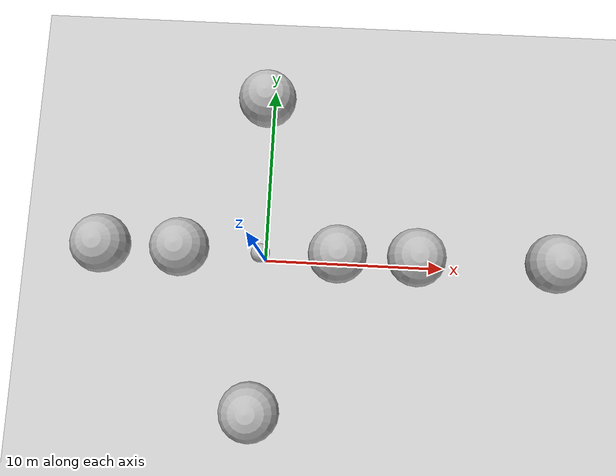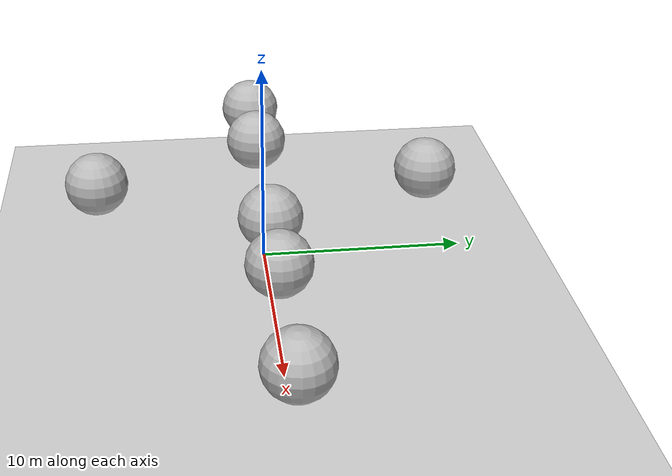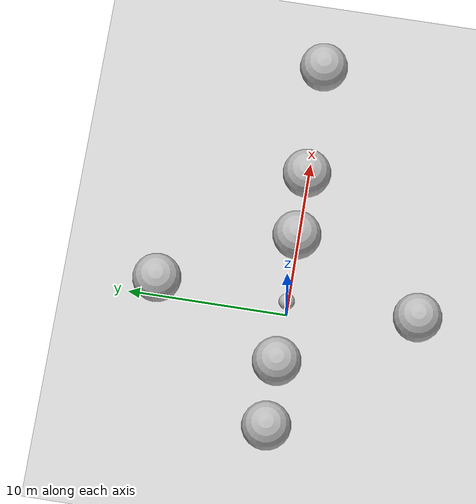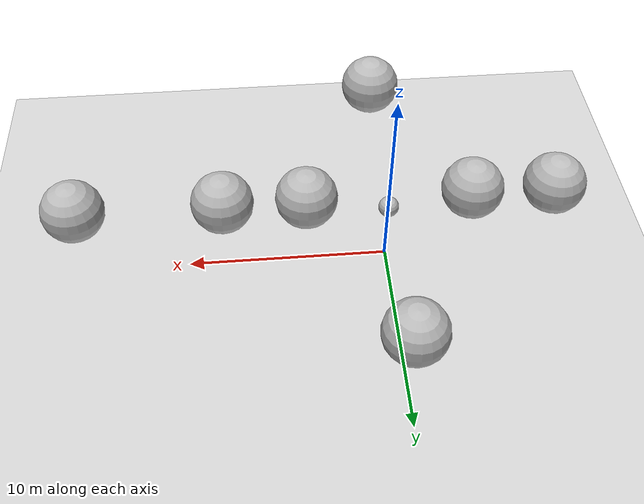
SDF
<?xml version="1.0" ?>
<sdf version="1.4">
    <world name="default">
        <include>
            <uri>model://sun</uri>
        </include>
        <physics type="dart">
            <gravity>0 0 -10.0</gravity>
        </physics>

	<include>
	<uri>model://ground_plane</uri>
	</include>

	<model name ='small_centered_sphere'>
	<static>0</static>
	<pose>0 0 3.5 0 0 0</pose>
	<link name ='body'>
	  <inertial>
	    <pose>0 0 0 0 0 0</pose>
	  </inertial>
	  <collision name ='geom'>
	    <geometry>
	      <sphere><radius>0.5</radius></sphere>
	    </geometry>
	  </collision>
	  <visual name ='visual'>
	    <geometry>
	      <sphere><radius>0.5</radius></sphere>
	    </geometry>
	  </visual>
	</link>
	</model>

	<model name ='large_centered_sphere'>
	<static>0</static>
	<pose>4 0 4.5 0 0 0</pose>
	<link name ='body'>
	  <inertial>
	    <pose>0 0 0 0 0 0</pose>
	  </inertial>
	  <collision name ='geom'>
	    <geometry>
	      <sphere><radius>1.5</radius></sphere>
	    </geometry>
	  </collision>
	  <visual name ='visual'>
	    <geometry>
	      <sphere><radius>1.5</radius></sphere>
	    </geometry>
	  </visual>
	</link>
	</model>

	<model name ='lowered_cog_sphere'>
	<static>0</static>
	<pose>8 0 4.5 0 0 0</pose>
	<link name ='body'>
	  <inertial>
	    <pose>0 0 -0.5 0 0 0</pose>
	  </inertial>
	  <collision name ='geom'>
	    <geometry>
	      <sphere><radius>1.5</radius></sphere>
	    </geometry>
	  </collision>
	  <visual name ='visual'>
	    <geometry>
	      <sphere><radius>1.5</radius></sphere>
	    </geometry>
	  </visual>
	</link>
	</model>

	<model name ='raised_cog_sphere'>
	<static>0</static>
	<pose>-4 0 4.5 0 0 0</pose>
	<link name ='body'>
	  <inertial>
	    <pose>0 0 0.5 0 0 0</pose>
	  </inertial>
	  <collision name ='geom'>
	    <geometry>
	      <sphere><radius>1.5</radius></sphere>
	    </geometry>
	  </collision>
	  <visual name ='visual'>
	    <geometry>
	      <sphere><radius>1.5</radius></sphere>
	    </geometry>
	  </visual>
	</link>
	</model>

	<model name ='cog_y_offset_sphere'>
	<static>0</static>
	<pose>-8 0 4.5 0 0 0</pose>
	<link name ='body'>
	  <inertial>
	    <pose>0 0.5 0 0 0 0</pose>
	  </inertial>
	  <collision name ='geom'>
	    <geometry>
	      <sphere><radius>1.5</radius></sphere>
	    </geometry>
	  </collision>
	  <visual name ='visual'>
	    <geometry>
	      <sphere><radius>1.5</radius></sphere>
	    </geometry>
	  </visual>
	</link>
	</model>

	<model name ='cog_x_offset_sphere'>
	<static>0</static>
	<pose>15 0 4.5 0 0 0</pose>
	<link name ='body'>
	  <inertial>
	    <pose>0.5 0 0 0 0 0</pose>
	  </inertial>
	  <collision name ='geom'>
	    <geometry>
	      <sphere><radius>1.5</radius></sphere>
	    </geometry>
	  </collision>
	  <visual name ='visual'>
	    <geometry>
	      <sphere><radius>1.5</radius></sphere>
	    </geometry>
	  </visual>
	</link>
	</model>

	<model name ='cog_xy_45deg_offset_sphere'>
	<static>0</static>
	<pose>0 8 4.5 0 0 0</pose>
	<link name ='body'>
	  <inertial>
	    <pose>0.353553 0.353553 0 0 0 0</pose>
	  </inertial>
	  <collision name ='geom'>
	    <geometry>
	      <sphere><radius>1.5</radius></sphere>
	    </geometry>
	  </collision>
	  <visual name ='visual'>
	    <geometry>
	      <sphere><radius>1.5</radius></sphere>
	    </geometry>
	  </visual>
	</link>
	</model>

	<model name ='cog_xy_-30deg_offset_sphere'>
	<static>0</static>
	<pose>0 -8 4.5 0 0 0</pose>
	<link name ='body'>
	  <inertial>
	    <pose>0.433013 -0.25 0 0 0 0</pose>
	  </inertial>
	  <collision name ='geom'>
	    <geometry>
	      <sphere><radius>1.5</radius></sphere>
	    </geometry>
	  </collision>
	  <visual name ='visual'>
	    <geometry>
	      <sphere><radius>1.5</radius></sphere>
	    </geometry>
	  </visual>
	</link>
	</model>

    </world>
</sdf>
